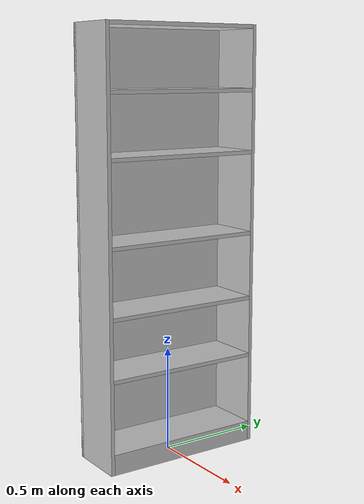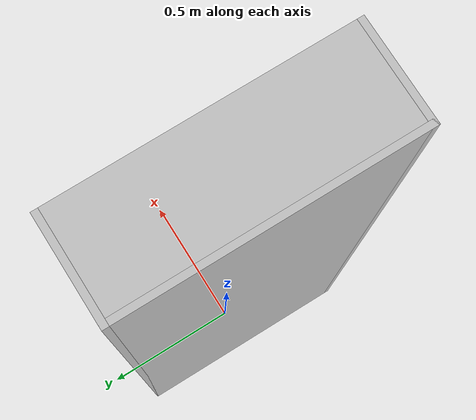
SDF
<?xml version="1.0"?>
<sdf version="1.6">
  <model name="rgo2018/bookcase">
    <link name="1_link">
      <collision name="1_col">
        <geometry>
          <box>
            <size>0.28 0.018 2.015</size>
          </box>
        </geometry>
      </collision>
      <visual name="1_vis">
        <geometry>
          <box>
            <size>0.28 0.018 2.015</size>
          </box>
        </geometry>
        <material>
          <ambient>0.75 0.75 0.75 1</ambient>
        </material>
      </visual>
      <pose>0 -0.39 1.0075 0 0 0</pose>
    </link>
    <link name="2_link">
      <collision name="2_col">
        <geometry>
          <box>
            <size>0.28 0.018 2.015</size>
          </box>
        </geometry>
      </collision>
      <visual name="2_vis">
        <geometry>
          <box>
            <size>0.28 0.018 2.015</size>
          </box>
        </geometry>
        <material>
          <ambient>0.75 0.75 0.75 1</ambient>
        </material>
      </visual>
      <pose>0 0.39 1.0075 0 0 0</pose>
    </link>
    <link name="3_link">
      <collision name="3_col">
        <geometry>
          <box>
            <size>0.018 0.798 2.015</size>
          </box>
        </geometry>
      </collision>
      <visual name="3_vis">
        <geometry>
          <box>
            <size>0.018 0.798 2.015</size>
          </box>
        </geometry>
        <material>
          <ambient>0.75 0.75 0.75 1</ambient>
        </material>
      </visual>
      <pose>-0.131 0 1.0075 0 0 0</pose>
    </link>
    <link name="4_link">
      <collision name="4_col">
        <geometry>
          <box>
            <size>0.262 0.762 0.018</size>
          </box>
        </geometry>
      </collision>
      <visual name="4_vis">
        <geometry>
          <box>
            <size>0.262 0.762 0.018</size>
          </box>
        </geometry>
        <material>
          <ambient>0.75 0.75 0.75 1</ambient>
        </material>
      </visual>
      <pose>0.009 0 2.006 0 0 0</pose>
    </link>
    <link name="5_link">
      <collision name="5_col">
        <geometry>
          <box>
            <size>0.262 0.762 0.097</size>
          </box>
        </geometry>
      </collision>
      <visual name="5_vis">
        <geometry>
          <box>
            <size>0.262 0.762 0.097</size>
          </box>
        </geometry>
        <material>
          <ambient>0.75 0.75 0.75 1</ambient>
        </material>
      </visual>
      <pose>0.009 0 0.0485 0 0 0</pose>
    </link>
    <link name="6_link">
      <collision name="6_col">
        <geometry>
          <box>
            <size>0.262 0.762 0.018</size>
          </box>
        </geometry>
      </collision>
      <visual name="6_vis">
        <geometry>
          <box>
            <size>0.262 0.762 0.018</size>
          </box>
        </geometry>
        <material>
          <ambient>0.75 0.75 0.75 1</ambient>
        </material>
      </visual>
      <pose>0.009 0 0.439 0 0 0</pose>
    </link>
    <link name="7_link">
      <collision name="7_col">
        <geometry>
          <box>
            <size>0.262 0.762 0.018</size>
          </box>
        </geometry>
      </collision>
      <visual name="7_vis">
        <geometry>
          <box>
            <size>0.262 0.762 0.018</size>
          </box>
        </geometry>
        <material>
          <ambient>0.75 0.75 0.75 1</ambient>
        </material>
      </visual>
      <pose>0.009 0 0.726 0 0 0</pose>
    </link>
    <link name="8_link">
      <collision name="8_col">
        <geometry>
          <box>
            <size>0.262 0.762 0.018</size>
          </box>
        </geometry>
      </collision>
      <visual name="8_vis">
        <geometry>
          <box>
            <size>0.262 0.762 0.018</size>
          </box>
        </geometry>
        <material>
          <ambient>0.75 0.75 0.75 1</ambient>
        </material>
      </visual>
      <pose>0.009 0 1.044 0 0 0</pose>
    </link>
    <link name="9_link">
      <collision name="9_col">
        <geometry>
          <box>
            <size>0.262 0.762 0.018</size>
          </box>
        </geometry>
      </collision>
      <visual name="9_vis">
        <geometry>
          <box>
            <size>0.262 0.762 0.018</size>
          </box>
        </geometry>
        <material>
          <ambient>0.75 0.75 0.75 1</ambient>
        </material>
      </visual>
      <pose>0.009 0 1.43 0 0 0</pose>
    </link>
    <link name="10_link">
      <collision name="10_col">
        <geometry>
          <box>
            <size>0.262 0.762 0.018</size>
          </box>
        </geometry>
      </collision>
      <visual name="10_vis">
        <geometry>
          <box>
            <size>0.262 0.762 0.018</size>
          </box>
        </geometry>
        <material>
          <ambient>0.75 0.75 0.75 1</ambient>
        </material>
      </visual>
      <pose>0.009 0 1.718 0 0 0</pose>
    </link>
    <link name="in_front_of">
      <virtual_volume name="in_front_of_vv">
        <geometry>
          <box>
            <size>0.2 0.4 0.01</size>
          </box>
        </geometry>
        <pose>0.64 0.0 0.005 0 0 0</pose>
      </virtual_volume>
    </link>
    <link name="on_top_of">
      <virtual_volume name="on_top_of_vv">
        <geometry>
          <box>
            <size>0.202 0.702 0.25</size>
          </box>
        </geometry>
        <pose>0.009 0.0 0.88 0 0 0</pose>
      </virtual_volume>
    </link>
    <link name="shelf1">
      <virtual_volume name="shelf1_vv">
        <geometry>
          <box>
            <size>0.202 0.702 0.25</size>
          </box>
        </geometry>
        <pose>0.009 0.0 0.242 0 0 0</pose>
      </virtual_volume>
    </link>
    <link name="shelf2">
      <virtual_volume name="shelf2_vv">
        <geometry>
          <box>
            <size>0.202 0.702 0.212</size>
          </box>
        </geometry>
        <pose>0.009 0.0 0.574 0 0 0</pose>
      </virtual_volume>
    </link>
    <link name="shelf3">
      <virtual_volume name="shelf3_vv">
        <geometry>
          <box>
            <size>0.202 0.702 0.25</size>
          </box>
        </geometry>
        <pose>0.009 0.0 0.88 0 0 0</pose>
      </virtual_volume>
    </link>
    <link name="shelf4">
      <virtual_volume name="shelf4_vv">
        <geometry>
          <box>
            <size>0.202 0.702 0.25</size>
          </box>
        </geometry>
        <pose>0.009 0.0 1.198 0 0 0</pose>
      </virtual_volume>
    </link>
    <link name="shelf5">
      <virtual_volume name="shelf5_vv">
        <geometry>
          <box>
            <size>0.202 0.702 0.221</size>
          </box>
        </geometry>
        <pose>0.009 0.0 1.5695 0 0 0</pose>
      </virtual_volume>
    </link>
    <link name="shelf6">
      <virtual_volume name="shelf6_vv">
        <geometry>
          <box>
            <size>0.202 0.702 0.223</size>
          </box>
        </geometry>
        <pose>0.009 0.0 1.8585 0 0 0</pose>
      </virtual_volume>
    </link>
    <static>true</static>
  </model>
</sdf>
